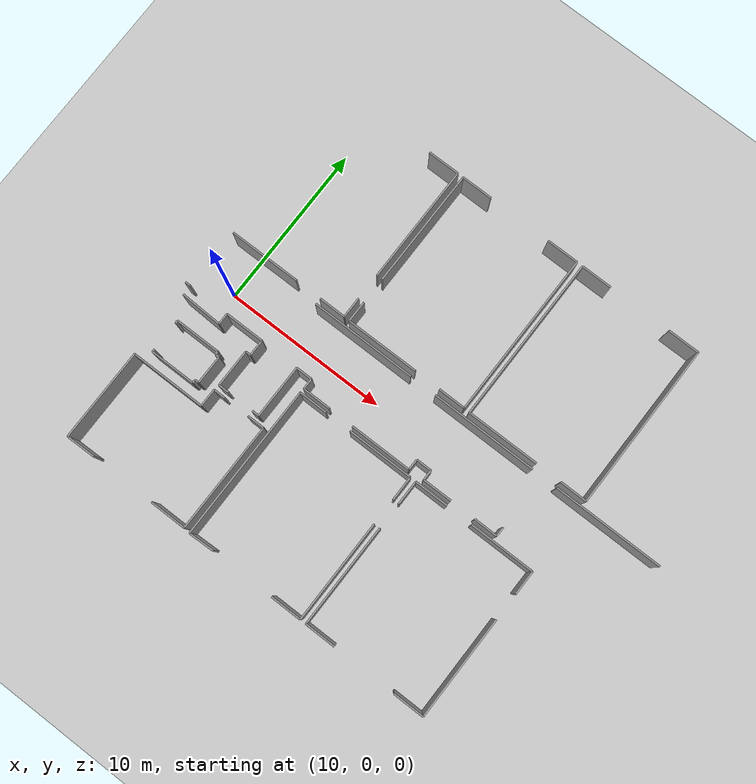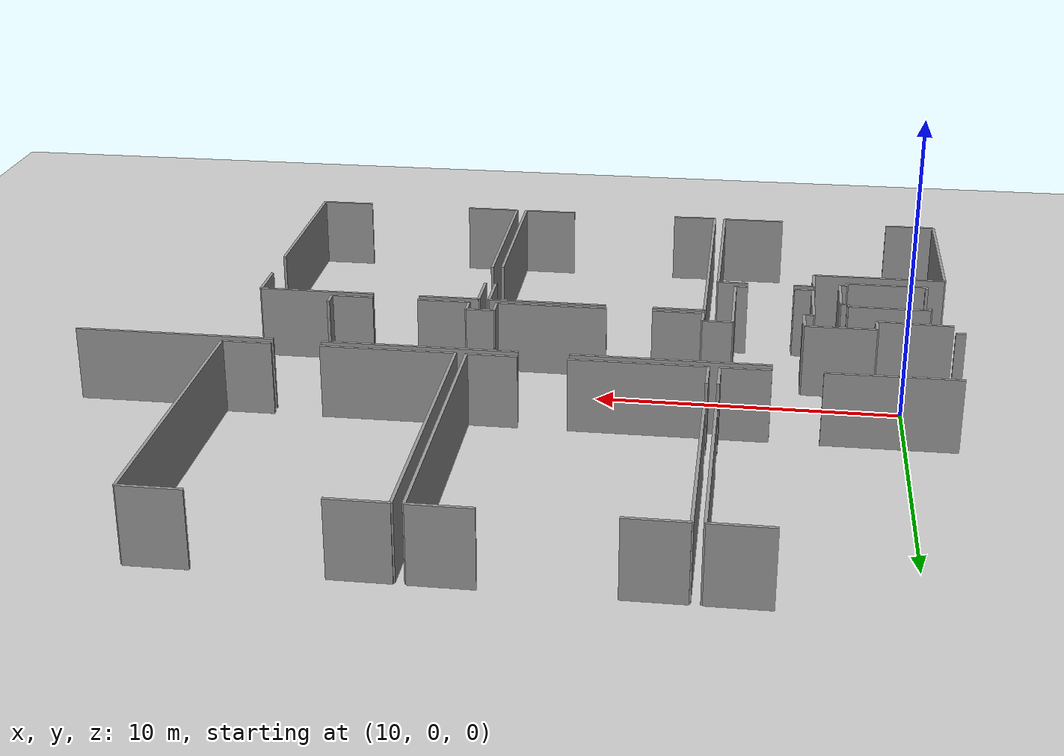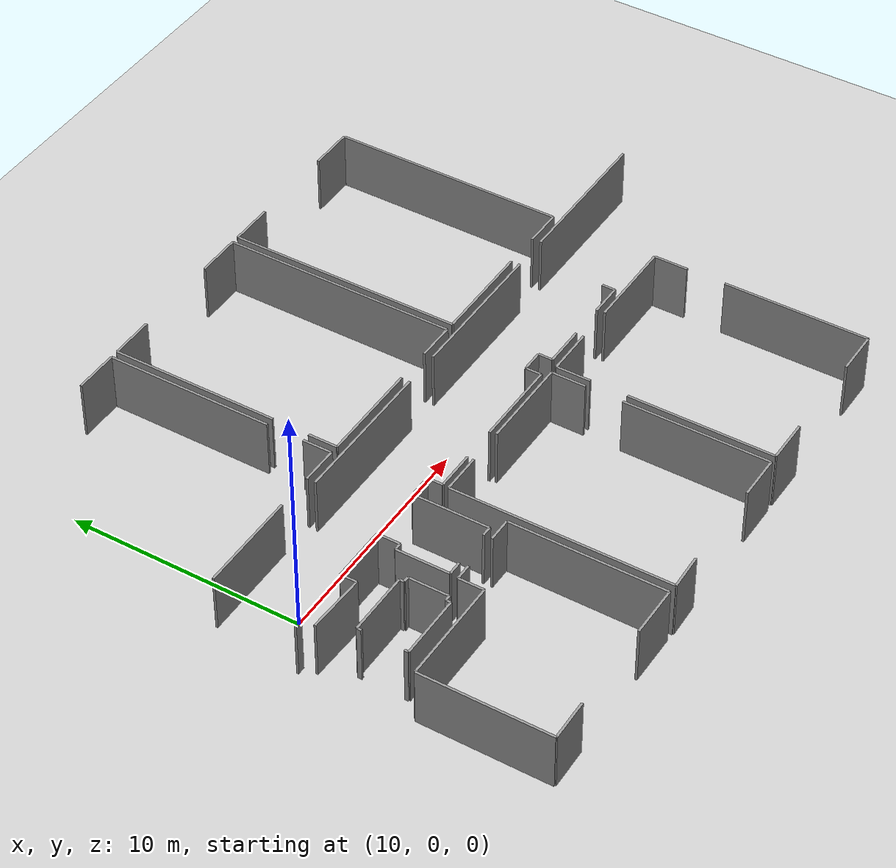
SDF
<sdf version="1.6">
 <world name="default">
  <model name="ground_plane">
   <static>1</static>
   <link name="link">
    <collision name="collision">
     <geometry><plane><normal>0 0 1</normal><size>100 100</size></plane></geometry>
     <surface><friction><ode><mu>100</mu><mu2>50</mu2></ode></friction></surface>
    </collision>
    <visual name="visual">
     <cast_shadows>0</cast_shadows>
     <geometry><plane><normal>0 0 1</normal><size>100 100</size></plane></geometry>
     <material>
      <script><uri>file://media/materials/scripts/gazebo.material</uri><name>Gazebo/Grey</name></script>
     </material>
    </visual>
   </link>
  </model>
  <model name="0510034691_Layout1">
   <static>1</static>
   <link name="Wall_211">
    <collision name="Wall_211_Collision">
     <geometry><box><size>0.175906860876 0.1 2.5</size></box></geometry>
     <pose>0.087953430438 0 1.25 0 0 0</pose>
    </collision>
    <visual name="Wall_211_Visual">
     <pose>0.087953430438 0 1.25 0 0 0</pose>
     <geometry><box><size>0.175906860876 0.1 2.5</size></box></geometry>
     <material>
      <script><uri>file://media/materials/scripts/gazebo.material</uri><name>Gazebo/Grey</name></script>
      <ambient>1 1 1 1</ambient>
     </material>
    </visual>
    <pose>65.508020031 -17.7415541829 0 0 0 1.57079632679</pose>
   </link>
   <link name="Wall_212">
    <collision name="Wall_212_Collision">
     <geometry><box><size>0.191031800503 0.1 2.5</size></box></geometry>
     <pose>0.0955159002517 0 1.25 0 0 0</pose>
    </collision>
    <visual name="Wall_212_Visual">
     <pose>0.0955159002517 0 1.25 0 0 0</pose>
     <geometry><box><size>0.191031800503 0.1 2.5</size></box></geometry>
     <material>
      <script><uri>file://media/materials/scripts/gazebo.material</uri><name>Gazebo/Grey</name></script>
      <ambient>1 1 1 1</ambient>
     </material>
    </visual>
    <pose>65.508020031 -15.8074684156 0 0 0 1.57079632679</pose>
   </link>
   <link name="Wall_213">
    <collision name="Wall_213_Collision">
     <geometry><box><size>2.74117288187 0.1 2.5</size></box></geometry>
     <pose>1.37058644094 0 1.25 0 0 0</pose>
    </collision>
    <visual name="Wall_213_Visual">
     <pose>1.37058644094 0 1.25 0 0 0</pose>
     <geometry><box><size>2.74117288187 0.1 2.5</size></box></geometry>
     <material>
      <script><uri>file://media/materials/scripts/gazebo.material</uri><name>Gazebo/Grey</name></script>
      <ambient>1 1 1 1</ambient>
     </material>
    </visual>
    <pose>65.508020031 -15.6164366151 0 0 0 0.0</pose>
   </link>
   <link name="Wall_214">
    <collision name="Wall_214_Collision">
     <geometry><box><size>0.195226111492 0.1 2.5</size></box></geometry>
     <pose>0.0976130557462 0 1.25 0 0 0</pose>
    </collision>
    <visual name="Wall_214_Visual">
     <pose>0.0976130557462 0 1.25 0 0 0</pose>
     <geometry><box><size>0.195226111492 0.1 2.5</size></box></geometry>
     <material>
      <script><uri>file://media/materials/scripts/gazebo.material</uri><name>Gazebo/Grey</name></script>
      <ambient>1 1 1 1</ambient>
     </material>
    </visual>
    <pose>68.2491929129 -15.6164366151 0 0 0 -1.57079632679</pose>
   </link>
   <link name="Wall_215">
    <collision name="Wall_215_Collision">
     <geometry><box><size>0.245176542363 0.1 2.5</size></box></geometry>
     <pose>0.122588271181 0 1.25 0 0 0</pose>
    </collision>
    <visual name="Wall_215_Visual">
     <pose>0.122588271181 0 1.25 0 0 0</pose>
     <geometry><box><size>0.245176542363 0.1 2.5</size></box></geometry>
     <material>
      <script><uri>file://media/materials/scripts/gazebo.material</uri><name>Gazebo/Grey</name></script>
      <ambient>1 1 1 1</ambient>
     </material>
    </visual>
    <pose>68.2491929129 -15.8116627266 0 0 0 0.0</pose>
   </link>
   <link name="Wall_216">
    <collision name="Wall_216_Collision">
     <geometry><box><size>1.72157401052 0.1 2.5</size></box></geometry>
     <pose>0.860787005262 0 1.25 0 0 0</pose>
    </collision>
    <visual name="Wall_216_Visual">
     <pose>0.860787005262 0 1.25 0 0 0</pose>
     <geometry><box><size>1.72157401052 0.1 2.5</size></box></geometry>
     <material>
      <script><uri>file://media/materials/scripts/gazebo.material</uri><name>Gazebo/Grey</name></script>
      <ambient>1 1 1 1</ambient>
     </material>
    </visual>
    <pose>68.4943694552 -15.8116627266 0 0 0 -1.57079632679</pose>
   </link>
   <link name="Wall_217">
    <collision name="Wall_217_Collision">
     <geometry><box><size>0.236660820051 0.1 2.5</size></box></geometry>
     <pose>0.118330410026 0 1.25 0 0 0</pose>
    </collision>
    <visual name="Wall_217_Visual">
     <pose>0.118330410026 0 1.25 0 0 0</pose>
     <geometry><box><size>0.236660820051 0.1 2.5</size></box></geometry>
     <material>
      <script><uri>file://media/materials/scripts/gazebo.material</uri><name>Gazebo/Grey</name></script>
      <ambient>1 1 1 1</ambient>
     </material>
    </visual>
    <pose>68.4943694552 -17.5332367371 0 0 0 3.14159265359</pose>
   </link>
   <link name="Wall_218">
    <collision name="Wall_218_Collision">
     <geometry><box><size>0.205902539465 0.1 2.5</size></box></geometry>
     <pose>0.102951269732 0 1.25 0 0 0</pose>
    </collision>
    <visual name="Wall_218_Visual">
     <pose>0.102951269732 0 1.25 0 0 0</pose>
     <geometry><box><size>0.205902539465 0.1 2.5</size></box></geometry>
     <material>
      <script><uri>file://media/materials/scripts/gazebo.material</uri><name>Gazebo/Grey</name></script>
      <ambient>1 1 1 1</ambient>
     </material>
    </visual>
    <pose>68.2577086352 -17.5332367371 0 0 0 -1.57079632679</pose>
   </link>
   <link name="Wall_219">
    <collision name="Wall_219_Collision">
     <geometry><box><size>2.74968966463 0.1 2.5</size></box></geometry>
     <pose>1.37484483231 0 1.25 0 0 0</pose>
    </collision>
    <visual name="Wall_219_Visual">
     <pose>1.37484483231 0 1.25 0 0 0</pose>
     <geometry><box><size>2.74968966463 0.1 2.5</size></box></geometry>
     <material>
      <script><uri>file://media/materials/scripts/gazebo.material</uri><name>Gazebo/Grey</name></script>
      <ambient>1 1 1 1</ambient>
     </material>
    </visual>
    <pose>68.2577086352 -17.7391392765 0 0 0 -3.14071440661</pose>
   </link>
   <link name="Wall_223">
    <collision name="Wall_223_Collision">
     <geometry><box><size>1.91959632934 0.1 2.5</size></box></geometry>
     <pose>0.959798164671 0 1.25 0 0 0</pose>
    </collision>
    <visual name="Wall_223_Visual">
     <pose>0.959798164671 0 1.25 0 0 0</pose>
     <geometry><box><size>1.91959632934 0.1 2.5</size></box></geometry>
     <material>
      <script><uri>file://media/materials/scripts/gazebo.material</uri><name>Gazebo/Grey</name></script>
      <ambient>1 1 1 1</ambient>
     </material>
    </visual>
    <pose>70.4720506368 -0.0184295482854 0 0 0 0.0</pose>
   </link>
   <link name="Wall_224">
    <collision name="Wall_224_Collision">
     <geometry><box><size>7.1524441394 0.1 2.5</size></box></geometry>
     <pose>3.5762220697 0 1.25 0 0 0</pose>
    </collision>
    <visual name="Wall_224_Visual">
     <pose>3.5762220697 0 1.25 0 0 0</pose>
     <geometry><box><size>7.1524441394 0.1 2.5</size></box></geometry>
     <material>
      <script><uri>file://media/materials/scripts/gazebo.material</uri><name>Gazebo/Grey</name></script>
      <ambient>1 1 1 1</ambient>
     </material>
    </visual>
    <pose>72.3916469661 -0.0184295482854 0 0 0 -1.57079632679</pose>
   </link>
   <link name="Wall_225">
    <collision name="Wall_225_Collision">
     <geometry><box><size>1.24520196243 0.1 2.5</size></box></geometry>
     <pose>0.622600981215 0 1.25 0 0 0</pose>
    </collision>
    <visual name="Wall_225_Visual">
     <pose>0.622600981215 0 1.25 0 0 0</pose>
     <geometry><box><size>1.24520196243 0.1 2.5</size></box></geometry>
     <material>
      <script><uri>file://media/materials/scripts/gazebo.material</uri><name>Gazebo/Grey</name></script>
      <ambient>1 1 1 1</ambient>
     </material>
    </visual>
    <pose>72.3916469661 -8.77055847886 0 0 0 -1.57079632679</pose>
   </link>
   <link name="Wall_226">
    <collision name="Wall_226_Collision">
     <geometry><box><size>1.62802816543 0.1 2.5</size></box></geometry>
     <pose>0.814014082717 0 1.25 0 0 0</pose>
    </collision>
    <visual name="Wall_226_Visual">
     <pose>0.814014082717 0 1.25 0 0 0</pose>
     <geometry><box><size>1.62802816543 0.1 2.5</size></box></geometry>
     <material>
      <script><uri>file://media/materials/scripts/gazebo.material</uri><name>Gazebo/Grey</name></script>
      <ambient>1 1 1 1</ambient>
     </material>
    </visual>
    <pose>72.3916469661 -10.0157604413 0 0 0 3.14159265359</pose>
   </link>
   <link name="Wall_227">
    <collision name="Wall_227_Collision">
     <geometry><box><size>4.32563816898 0.1 2.5</size></box></geometry>
     <pose>2.16281908449 0 1.25 0 0 0</pose>
    </collision>
    <visual name="Wall_227_Visual">
     <pose>2.16281908449 0 1.25 0 0 0</pose>
     <geometry><box><size>4.32563816898 0.1 2.5</size></box></geometry>
     <material>
      <script><uri>file://media/materials/scripts/gazebo.material</uri><name>Gazebo/Grey</name></script>
      <ambient>1 1 1 1</ambient>
     </material>
    </visual>
    <pose>69.1640611098 -10.0157604413 0 0 0 -3.13771408461</pose>
   </link>
   <link name="Wall_228">
    <collision name="Wall_228_Collision">
     <geometry><box><size>1.25981850072 0.1 2.5</size></box></geometry>
     <pose>0.629909250362 0 1.25 0 0 0</pose>
    </collision>
    <visual name="Wall_228_Visual">
     <pose>0.629909250362 0 1.25 0 0 0</pose>
     <geometry><box><size>1.25981850072 0.1 2.5</size></box></geometry>
     <material>
      <script><uri>file://media/materials/scripts/gazebo.material</uri><name>Gazebo/Grey</name></script>
      <ambient>1 1 1 1</ambient>
     </material>
    </visual>
    <pose>72.7496886042 -10.0254200666 0 0 0 1.57079632679</pose>
   </link>
   <link name="Wall_229">
    <collision name="Wall_229_Collision">
     <geometry><box><size>7.1528254404 0.1 2.5</size></box></geometry>
     <pose>3.5764127202 0 1.25 0 0 0</pose>
    </collision>
    <visual name="Wall_229_Visual">
     <pose>3.5764127202 0 1.25 0 0 0</pose>
     <geometry><box><size>7.1528254404 0.1 2.5</size></box></geometry>
     <material>
      <script><uri>file://media/materials/scripts/gazebo.material</uri><name>Gazebo/Grey</name></script>
      <ambient>1 1 1 1</ambient>
     </material>
    </visual>
    <pose>72.7496886042 -7.17125498869 0 0 0 1.57079632679</pose>
   </link>
   <link name="Wall_230">
    <collision name="Wall_230_Collision">
     <geometry><box><size>1.89303235974 0.1 2.5</size></box></geometry>
     <pose>0.946516179872 0 1.25 0 0 0</pose>
    </collision>
    <visual name="Wall_230_Visual">
     <pose>0.946516179872 0 1.25 0 0 0</pose>
     <geometry><box><size>1.89303235974 0.1 2.5</size></box></geometry>
     <material>
      <script><uri>file://media/materials/scripts/gazebo.material</uri><name>Gazebo/Grey</name></script>
      <ambient>1 1 1 1</ambient>
     </material>
    </visual>
    <pose>72.7496886042 -0.0184295482854 0 0 0 0.0</pose>
   </link>
   <link name="Wall_231">
    <collision name="Wall_231_Collision">
     <geometry><box><size>1.94005948296 0.1 2.5</size></box></geometry>
     <pose>0.970029741478 0 1.25 0 0 0</pose>
    </collision>
    <visual name="Wall_231_Visual">
     <pose>0.970029741478 0 1.25 0 0 0</pose>
     <geometry><box><size>1.94005948296 0.1 2.5</size></box></geometry>
     <material>
      <script><uri>file://media/materials/scripts/gazebo.material</uri><name>Gazebo/Grey</name></script>
      <ambient>1 1 1 1</ambient>
     </material>
    </visual>
    <pose>78.4910648466 -0.0184295482854 0 0 0 0.0</pose>
   </link>
   <link name="Wall_232">
    <collision name="Wall_232_Collision">
     <geometry><box><size>9.99072167569 0.1 2.5</size></box></geometry>
     <pose>4.99536083785 0 1.25 0 0 0</pose>
    </collision>
    <visual name="Wall_232_Visual">
     <pose>4.99536083785 0 1.25 0 0 0</pose>
     <geometry><box><size>9.99072167569 0.1 2.5</size></box></geometry>
     <material>
      <script><uri>file://media/materials/scripts/gazebo.material</uri><name>Gazebo/Grey</name></script>
      <ambient>1 1 1 1</ambient>
     </material>
    </visual>
    <pose>80.4311243295 -0.0184295482854 0 0 0 -1.57079632679</pose>
   </link>
   <link name="Wall_233">
    <collision name="Wall_233_Collision">
     <geometry><box><size>1.64518671039 0.1 2.5</size></box></geometry>
     <pose>0.822593355195 0 1.25 0 0 0</pose>
    </collision>
    <visual name="Wall_233_Visual">
     <pose>0.822593355195 0 1.25 0 0 0</pose>
     <geometry><box><size>1.64518671039 0.1 2.5</size></box></geometry>
     <material>
      <script><uri>file://media/materials/scripts/gazebo.material</uri><name>Gazebo/Grey</name></script>
      <ambient>1 1 1 1</ambient>
     </material>
    </visual>
    <pose>80.4311243295 -10.009151224 0 0 0 3.14159265359</pose>
   </link>
   <link name="Wall_234">
    <collision name="Wall_234_Collision">
     <geometry><box><size>4.44053413641 0.1 2.5</size></box></geometry>
     <pose>2.2202670682 0 1.25 0 0 0</pose>
    </collision>
    <visual name="Wall_234_Visual">
     <pose>2.2202670682 0 1.25 0 0 0</pose>
     <geometry><box><size>4.44053413641 0.1 2.5</size></box></geometry>
     <material>
      <script><uri>file://media/materials/scripts/gazebo.material</uri><name>Gazebo/Grey</name></script>
      <ambient>1 1 1 1</ambient>
     </material>
    </visual>
    <pose>77.1901929383 -10.009151224 0 0 0 -3.1379289324</pose>
   </link>
   <link name="Wall_235">
    <collision name="Wall_235_Collision">
     <geometry><box><size>10.0050840133 0.1 2.5</size></box></geometry>
     <pose>5.00254200666 0 1.25 0 0 0</pose>
    </collision>
    <visual name="Wall_235_Visual">
     <pose>5.00254200666 0 1.25 0 0 0</pose>
     <geometry><box><size>10.0050840133 0.1 2.5</size></box></geometry>
     <material>
      <script><uri>file://media/materials/scripts/gazebo.material</uri><name>Gazebo/Grey</name></script>
      <ambient>1 1 1 1</ambient>
     </material>
    </visual>
    <pose>80.7887846666 -10.0279620733 0 0 0 1.57079632679</pose>
   </link>
   <link name="Wall_236">
    <collision name="Wall_236_Collision">
     <geometry><box><size>1.89049035308 0.1 2.5</size></box></geometry>
     <pose>0.945245176542 0 1.25 0 0 0</pose>
    </collision>
    <visual name="Wall_236_Visual">
     <pose>0.945245176542 0 1.25 0 0 0</pose>
     <geometry><box><size>1.89049035308 0.1 2.5</size></box></geometry>
     <material>
      <script><uri>file://media/materials/scripts/gazebo.material</uri><name>Gazebo/Grey</name></script>
      <ambient>1 1 1 1</ambient>
     </material>
    </visual>
    <pose>80.7887846666 -0.0228780599405 0 0 0 0.0</pose>
   </link>
   <link name="Wall_237">
    <collision name="Wall_237_Collision">
     <geometry><box><size>1.93611937263 0.1 2.5</size></box></geometry>
     <pose>0.968059686316 0 1.25 0 0 0</pose>
    </collision>
    <visual name="Wall_237_Visual">
     <pose>0.968059686316 0 1.25 0 0 0</pose>
     <geometry><box><size>1.93611937263 0.1 2.5</size></box></geometry>
     <material>
      <script><uri>file://media/materials/scripts/gazebo.material</uri><name>Gazebo/Grey</name></script>
      <ambient>1 1 1 1</ambient>
     </material>
    </visual>
    <pose>86.5226619894 -0.0228780599405 0 0 0 0.0</pose>
   </link>
   <link name="Wall_238">
    <collision name="Wall_238_Collision">
     <geometry><box><size>9.99097587636 0.1 2.5</size></box></geometry>
     <pose>4.99548793818 0 1.25 0 0 0</pose>
    </collision>
    <visual name="Wall_238_Visual">
     <pose>4.99548793818 0 1.25 0 0 0</pose>
     <geometry><box><size>9.99097587636 0.1 2.5</size></box></geometry>
     <material>
      <script><uri>file://media/materials/scripts/gazebo.material</uri><name>Gazebo/Grey</name></script>
      <ambient>1 1 1 1</ambient>
     </material>
    </visual>
    <pose>88.458781362 -0.0228780599405 0 0 0 -1.57079632679</pose>
   </link>
   <link name="Wall_239">
    <collision name="Wall_239_Collision">
     <geometry><box><size>1.64556801139 0.1 2.5</size></box></geometry>
     <pose>0.822784005694 0 1.25 0 0 0</pose>
    </collision>
    <visual name="Wall_239_Visual">
     <pose>0.822784005694 0 1.25 0 0 0</pose>
     <geometry><box><size>1.64556801139 0.1 2.5</size></box></geometry>
     <material>
      <script><uri>file://media/materials/scripts/gazebo.material</uri><name>Gazebo/Grey</name></script>
      <ambient>1 1 1 1</ambient>
     </material>
    </visual>
    <pose>88.458781362 -10.0138539363 0 0 0 3.14159265359</pose>
   </link>
   <link name="Wall_240">
    <collision name="Wall_240_Collision">
     <geometry><box><size>4.4248934841 0.1 2.5</size></box></geometry>
     <pose>2.21244674205 0 1.25 0 0 0</pose>
    </collision>
    <visual name="Wall_240_Visual">
     <pose>2.21244674205 0 1.25 0 0 0</pose>
     <geometry><box><size>4.4248934841 0.1 2.5</size></box></geometry>
     <material>
      <script><uri>file://media/materials/scripts/gazebo.material</uri><name>Gazebo/Grey</name></script>
      <ambient>1 1 1 1</ambient>
     </material>
    </visual>
    <pose>85.2136556598 -10.0138539363 0 0 0 -3.1384042919</pose>
   </link>
   <link name="Wall_292">
    <collision name="Wall_292_Collision">
     <geometry><box><size>6.23833854445 0.1 2.5</size></box></geometry>
     <pose>3.11916927222 0 1.25 0 0 0</pose>
    </collision>
    <visual name="Wall_292_Visual">
     <pose>3.11916927222 0 1.25 0 0 0</pose>
     <geometry><box><size>6.23833854445 0.1 2.5</size></box></geometry>
     <material>
      <script><uri>file://media/materials/scripts/gazebo.material</uri><name>Gazebo/Grey</name></script>
      <ambient>1 1 1 1</ambient>
     </material>
    </visual>
    <pose>80.7884033656 -23.964132286 0 0 0 1.57079632679</pose>
   </link>
   <link name="Wall_293">
    <collision name="Wall_293_Collision">
     <geometry><box><size>1.48948880246 0.1 2.5</size></box></geometry>
     <pose>0.74474440123 0 1.25 0 0 0</pose>
    </collision>
    <visual name="Wall_293_Visual">
     <pose>0.74474440123 0 1.25 0 0 0</pose>
     <geometry><box><size>1.48948880246 0.1 2.5</size></box></geometry>
     <material>
      <script><uri>file://media/materials/scripts/gazebo.material</uri><name>Gazebo/Grey</name></script>
      <ambient>1 1 1 1</ambient>
     </material>
    </visual>
    <pose>80.7884033656 -16.1421235924 0 0 0 1.57079632679</pose>
   </link>
   <link name="Wall_294">
    <collision name="Wall_294_Collision">
     <geometry><box><size>2.06932052162 0.1 2.5</size></box></geometry>
     <pose>1.03466026081 0 1.25 0 0 0</pose>
    </collision>
    <visual name="Wall_294_Visual">
     <pose>1.03466026081 0 1.25 0 0 0</pose>
     <geometry><box><size>2.06932052162 0.1 2.5</size></box></geometry>
     <material>
      <script><uri>file://media/materials/scripts/gazebo.material</uri><name>Gazebo/Grey</name></script>
      <ambient>1 1 1 1</ambient>
     </material>
    </visual>
    <pose>80.7884033656 -14.6526347899 0 0 0 0.0</pose>
   </link>
   <link name="Wall_295">
    <collision name="Wall_295_Collision">
     <geometry><box><size>3.97913012532 0.1 2.5</size></box></geometry>
     <pose>1.98956506266 0 1.25 0 0 0</pose>
    </collision>
    <visual name="Wall_295_Visual">
     <pose>1.98956506266 0 1.25 0 0 0</pose>
     <geometry><box><size>3.97913012532 0.1 2.5</size></box></geometry>
     <material>
      <script><uri>file://media/materials/scripts/gazebo.material</uri><name>Gazebo/Grey</name></script>
      <ambient>1 1 1 1</ambient>
     </material>
    </visual>
    <pose>84.4582983807 -14.6526347899 0 0 0 0.0</pose>
   </link>
   <link name="Wall_296">
    <collision name="Wall_296_Collision">
     <geometry><box><size>1.46724624419 0.1 2.5</size></box></geometry>
     <pose>0.733623122093 0 1.25 0 0 0</pose>
    </collision>
    <visual name="Wall_296_Visual">
     <pose>0.733623122093 0 1.25 0 0 0</pose>
     <geometry><box><size>1.46724624419 0.1 2.5</size></box></geometry>
     <material>
      <script><uri>file://media/materials/scripts/gazebo.material</uri><name>Gazebo/Grey</name></script>
      <ambient>1 1 1 1</ambient>
     </material>
    </visual>
    <pose>88.4374285061 -14.6526347899 0 0 0 -1.57079632679</pose>
   </link>
   <link name="Wall_297">
    <collision name="Wall_297_Collision">
     <geometry><box><size>6.19372632756 0.1 2.5</size></box></geometry>
     <pose>3.09686316378 0 1.25 0 0 0</pose>
    </collision>
    <visual name="Wall_297_Visual">
     <pose>3.09686316378 0 1.25 0 0 0</pose>
     <geometry><box><size>6.19372632756 0.1 2.5</size></box></geometry>
     <material>
      <script><uri>file://media/materials/scripts/gazebo.material</uri><name>Gazebo/Grey</name></script>
      <ambient>1 1 1 1</ambient>
     </material>
    </visual>
    <pose>88.4374285061 -17.7762525738 0 0 0 -1.57079632679</pose>
   </link>
   <link name="Wall_298">
    <collision name="Wall_298_Collision">
     <geometry><box><size>1.89303235974 0.1 2.5</size></box></geometry>
     <pose>0.946516179872 0 1.25 0 0 0</pose>
    </collision>
    <visual name="Wall_298_Visual">
     <pose>0.946516179872 0 1.25 0 0 0</pose>
     <geometry><box><size>1.89303235974 0.1 2.5</size></box></geometry>
     <material>
      <script><uri>file://media/materials/scripts/gazebo.material</uri><name>Gazebo/Grey</name></script>
      <ambient>1 1 1 1</ambient>
     </material>
    </visual>
    <pose>88.4374285061 -23.9699789013 0 0 0 3.14159265359</pose>
   </link>
   <link name="Wall_299">
    <collision name="Wall_299_Collision">
     <geometry><box><size>1.88261921101 0.1 2.5</size></box></geometry>
     <pose>0.941309605506 0 1.25 0 0 0</pose>
    </collision>
    <visual name="Wall_299_Visual">
     <pose>0.941309605506 0 1.25 0 0 0</pose>
     <geometry><box><size>1.88261921101 0.1 2.5</size></box></geometry>
     <material>
      <script><uri>file://media/materials/scripts/gazebo.material</uri><name>Gazebo/Grey</name></script>
      <ambient>1 1 1 1</ambient>
     </material>
    </visual>
    <pose>82.6710134981 -23.9699789013 0 0 0 3.13848707351</pose>
   </link>
   <link name="Wall_300">
    <collision name="Wall_300_Collision">
     <geometry><box><size>9.36477194224 0.1 2.5</size></box></geometry>
     <pose>4.68238597112 0 1.25 0 0 0</pose>
    </collision>
    <visual name="Wall_300_Visual">
     <pose>4.68238597112 0 1.25 0 0 0</pose>
     <geometry><box><size>9.36477194224 0.1 2.5</size></box></geometry>
     <material>
      <script><uri>file://media/materials/scripts/gazebo.material</uri><name>Gazebo/Grey</name></script>
      <ambient>1 1 1 1</ambient>
     </material>
    </visual>
    <pose>73.0971809146 -24.0138285162 0 0 0 1.5728321546</pose>
   </link>
   <link name="Wall_301">
    <collision name="Wall_301_Collision">
     <geometry><box><size>1.7434352678 0.1 2.5</size></box></geometry>
     <pose>0.8717176339 0 1.25 0 0 0</pose>
    </collision>
    <visual name="Wall_301_Visual">
     <pose>0.8717176339 0 1.25 0 0 0</pose>
     <geometry><box><size>1.7434352678 0.1 2.5</size></box></geometry>
     <material>
      <script><uri>file://media/materials/scripts/gazebo.material</uri><name>Gazebo/Grey</name></script>
      <ambient>1 1 1 1</ambient>
     </material>
    </visual>
    <pose>73.0781158647 -14.6490759806 0 0 0 0.0</pose>
   </link>
   <link name="Wall_302">
    <collision name="Wall_302_Collision">
     <geometry><box><size>4.00760059991 0.1 2.5</size></box></geometry>
     <pose>2.00380029996 0 1.25 0 0 0</pose>
    </collision>
    <visual name="Wall_302_Visual">
     <pose>2.00380029996 0 1.25 0 0 0</pose>
     <geometry><box><size>4.00760059991 0.1 2.5</size></box></geometry>
     <material>
      <script><uri>file://media/materials/scripts/gazebo.material</uri><name>Gazebo/Grey</name></script>
      <ambient>1 1 1 1</ambient>
     </material>
    </visual>
    <pose>76.4155164087 -14.6490759806 0 0 0 0.0</pose>
   </link>
   <link name="Wall_303">
    <collision name="Wall_303_Collision">
     <geometry><box><size>1.49203080912 0.1 2.5</size></box></geometry>
     <pose>0.74601540456 0 1.25 0 0 0</pose>
    </collision>
    <visual name="Wall_303_Visual">
     <pose>0.74601540456 0 1.25 0 0 0</pose>
     <geometry><box><size>1.49203080912 0.1 2.5</size></box></geometry>
     <material>
      <script><uri>file://media/materials/scripts/gazebo.material</uri><name>Gazebo/Grey</name></script>
      <ambient>1 1 1 1</ambient>
     </material>
    </visual>
    <pose>80.4231170086 -14.6490759806 0 0 0 -1.57079632679</pose>
   </link>
   <link name="Wall_304">
    <collision name="Wall_304_Collision">
     <geometry><box><size>6.22600981215 0.1 2.5</size></box></geometry>
     <pose>3.11300490607 0 1.25 0 0 0</pose>
    </collision>
    <visual name="Wall_304_Visual">
     <pose>3.11300490607 0 1.25 0 0 0</pose>
     <geometry><box><size>6.22600981215 0.1 2.5</size></box></geometry>
     <material>
      <script><uri>file://media/materials/scripts/gazebo.material</uri><name>Gazebo/Grey</name></script>
      <ambient>1 1 1 1</ambient>
     </material>
    </visual>
    <pose>80.4231170086 -17.7377411729 0 0 0 -1.57079632679</pose>
   </link>
   <link name="Wall_305">
    <collision name="Wall_305_Collision">
     <geometry><box><size>1.90409008872 0.1 2.5</size></box></geometry>
     <pose>0.952045044358 0 1.25 0 0 0</pose>
    </collision>
    <visual name="Wall_305_Visual">
     <pose>0.952045044358 0 1.25 0 0 0</pose>
     <geometry><box><size>1.90409008872 0.1 2.5</size></box></geometry>
     <material>
      <script><uri>file://media/materials/scripts/gazebo.material</uri><name>Gazebo/Grey</name></script>
      <ambient>1 1 1 1</ambient>
     </material>
    </visual>
    <pose>80.4231170086 -23.963750985 0 0 0 3.14159265359</pose>
   </link>
   <link name="Wall_306">
    <collision name="Wall_306_Collision">
     <geometry><box><size>1.54495375577 0.1 2.5</size></box></geometry>
     <pose>0.772476877883 0 1.25 0 0 0</pose>
    </collision>
    <visual name="Wall_306_Visual">
     <pose>0.772476877883 0 1.25 0 0 0</pose>
     <geometry><box><size>1.54495375577 0.1 2.5</size></box></geometry>
     <material>
      <script><uri>file://media/materials/scripts/gazebo.material</uri><name>Gazebo/Grey</name></script>
      <ambient>1 1 1 1</ambient>
     </material>
    </visual>
    <pose>74.6413228603 -23.963750985 0 0 0 -3.10917336331</pose>
   </link>
   <link name="Wall_307">
    <collision name="Wall_307_Collision">
     <geometry><box><size>5.57627290984 0.1 2.5</size></box></geometry>
     <pose>2.78813645492 0 1.25 0 0 0</pose>
    </collision>
    <visual name="Wall_307_Visual">
     <pose>2.78813645492 0 1.25 0 0 0</pose>
     <geometry><box><size>5.57627290984 0.1 2.5</size></box></geometry>
     <material>
      <script><uri>file://media/materials/scripts/gazebo.material</uri><name>Gazebo/Grey</name></script>
      <ambient>1 1 1 1</ambient>
     </material>
    </visual>
    <pose>64.8420142861 -23.9909504563 0 0 0 1.57079632679</pose>
   </link>
   <link name="Wall_308">
    <collision name="Wall_308_Collision">
     <geometry><box><size>4.54269300186 0.1 2.5</size></box></geometry>
     <pose>2.27134650093 0 1.25 0 0 0</pose>
    </collision>
    <visual name="Wall_308_Visual">
     <pose>2.27134650093 0 1.25 0 0 0</pose>
     <geometry><box><size>4.54269300186 0.1 2.5</size></box></geometry>
     <material>
      <script><uri>file://media/materials/scripts/gazebo.material</uri><name>Gazebo/Grey</name></script>
      <ambient>1 1 1 1</ambient>
     </material>
    </visual>
    <pose>64.8420142861 -18.4146775465 0 0 0 0.0</pose>
   </link>
   <link name="Wall_309">
    <collision name="Wall_309_Collision">
     <geometry><box><size>1.08645364651 0.1 2.5</size></box></geometry>
     <pose>0.543226823254 0 1.25 0 0 0</pose>
    </collision>
    <visual name="Wall_309_Visual">
     <pose>0.543226823254 0 1.25 0 0 0</pose>
     <geometry><box><size>1.08645364651 0.1 2.5</size></box></geometry>
     <material>
      <script><uri>file://media/materials/scripts/gazebo.material</uri><name>Gazebo/Grey</name></script>
      <ambient>1 1 1 1</ambient>
     </material>
    </visual>
    <pose>69.3847072879 -18.4146775465 0 0 0 1.57079632679</pose>
   </link>
   <link name="Wall_310">
    <collision name="Wall_310_Collision">
     <geometry><box><size>0.701975139175 0.1 2.5</size></box></geometry>
     <pose>0.350987569587 0 1.25 0 0 0</pose>
    </collision>
    <visual name="Wall_310_Visual">
     <pose>0.350987569587 0 1.25 0 0 0</pose>
     <geometry><box><size>0.701975139175 0.1 2.5</size></box></geometry>
     <material>
      <script><uri>file://media/materials/scripts/gazebo.material</uri><name>Gazebo/Grey</name></script>
      <ambient>1 1 1 1</ambient>
     </material>
    </visual>
    <pose>69.3847072879 -17.3282238999 0 0 0 0.0</pose>
   </link>
   <link name="Wall_311">
    <collision name="Wall_311_Collision">
     <geometry><box><size>1.03192760365 0.1 2.5</size></box></geometry>
     <pose>0.515963801825 0 1.25 0 0 0</pose>
    </collision>
    <visual name="Wall_311_Visual">
     <pose>0.515963801825 0 1.25 0 0 0</pose>
     <geometry><box><size>1.03192760365 0.1 2.5</size></box></geometry>
     <material>
      <script><uri>file://media/materials/scripts/gazebo.material</uri><name>Gazebo/Grey</name></script>
      <ambient>1 1 1 1</ambient>
     </material>
    </visual>
    <pose>71.6825542083 -17.3282238999 0 0 0 0.0</pose>
   </link>
   <link name="Wall_312">
    <collision name="Wall_312_Collision">
     <geometry><box><size>6.63781489108 0.1 2.5</size></box></geometry>
     <pose>3.31890744554 0 1.25 0 0 0</pose>
    </collision>
    <visual name="Wall_312_Visual">
     <pose>3.31890744554 0 1.25 0 0 0</pose>
     <geometry><box><size>6.63781489108 0.1 2.5</size></box></geometry>
     <material>
      <script><uri>file://media/materials/scripts/gazebo.material</uri><name>Gazebo/Grey</name></script>
      <ambient>1 1 1 1</ambient>
     </material>
    </visual>
    <pose>72.7144818119 -17.3282238999 0 0 0 -1.57079632679</pose>
   </link>
   <link name="Wall_313">
    <collision name="Wall_313_Collision">
     <geometry><box><size>2.21434200158 0.1 2.5</size></box></geometry>
     <pose>1.10717100079 0 1.25 0 0 0</pose>
    </collision>
    <visual name="Wall_313_Visual">
     <pose>1.10717100079 0 1.25 0 0 0</pose>
     <geometry><box><size>2.21434200158 0.1 2.5</size></box></geometry>
     <material>
      <script><uri>file://media/materials/scripts/gazebo.material</uri><name>Gazebo/Grey</name></script>
      <ambient>1 1 1 1</ambient>
     </material>
    </visual>
    <pose>72.7144818119 -23.966038791 0 0 0 3.14159265359</pose>
   </link>
   <link name="Wall_314">
    <collision name="Wall_314_Collision">
     <geometry><box><size>1.76801404558 0.1 2.5</size></box></geometry>
     <pose>0.884007022789 0 1.25 0 0 0</pose>
    </collision>
    <visual name="Wall_314_Visual">
     <pose>0.884007022789 0 1.25 0 0 0</pose>
     <geometry><box><size>1.76801404558 0.1 2.5</size></box></geometry>
     <material>
      <script><uri>file://media/materials/scripts/gazebo.material</uri><name>Gazebo/Grey</name></script>
      <ambient>1 1 1 1</ambient>
     </material>
    </visual>
    <pose>66.6098528178 -23.966038791 0 0 0 -3.12750199085</pose>
   </link>
   <link name="Wall_316">
    <collision name="Wall_316_Collision">
     <geometry><box><size>0.334909377463 0.1 2.5</size></box></geometry>
     <pose>0.167454688731 0 1.25 0 0 0</pose>
    </collision>
    <visual name="Wall_316_Visual">
     <pose>0.167454688731 0 1.25 0 0 0</pose>
     <geometry><box><size>0.334909377463 0.1 2.5</size></box></geometry>
     <material>
      <script><uri>file://media/materials/scripts/gazebo.material</uri><name>Gazebo/Grey</name></script>
      <ambient>1 1 1 1</ambient>
     </material>
    </visual>
    <pose>64.8417600854 -13.7246752586 0 0 0 3.14159265359</pose>
   </link>
   <link name="Wall_322">
    <collision name="Wall_322_Collision">
     <geometry><box><size>6.42047332164 0.1 2.5</size></box></geometry>
     <pose>3.21023666082 0 1.25 0 0 0</pose>
    </collision>
    <visual name="Wall_322_Visual">
     <pose>3.21023666082 0 1.25 0 0 0</pose>
     <geometry><box><size>6.42047332164 0.1 2.5</size></box></geometry>
     <material>
      <script><uri>file://media/materials/scripts/gazebo.material</uri><name>Gazebo/Grey</name></script>
      <ambient>1 1 1 1</ambient>
     </material>
    </visual>
    <pose>70.7552301787 -10.3829533033 0 0 0 0.0</pose>
   </link>
   <link name="Wall_323">
    <collision name="Wall_323_Collision">
     <geometry><box><size>6.42441343196 0.1 2.5</size></box></geometry>
     <pose>3.21220671598 0 1.25 0 0 0</pose>
    </collision>
    <visual name="Wall_323_Visual">
     <pose>3.21220671598 0 1.25 0 0 0</pose>
     <geometry><box><size>6.42441343196 0.1 2.5</size></box></geometry>
     <material>
      <script><uri>file://media/materials/scripts/gazebo.material</uri><name>Gazebo/Grey</name></script>
      <ambient>1 1 1 1</ambient>
     </material>
    </visual>
    <pose>78.8118660871 -10.3829533033 0 0 0 0.0</pose>
   </link>
   <link name="Wall_324">
    <collision name="Wall_324_Collision">
     <geometry><box><size>6.66895447266 0.1 2.5</size></box></geometry>
     <pose>3.33447723633 0 1.25 0 0 0</pose>
    </collision>
    <visual name="Wall_324_Visual">
     <pose>3.33447723633 0 1.25 0 0 0</pose>
     <geometry><box><size>6.66895447266 0.1 2.5</size></box></geometry>
     <material>
      <script><uri>file://media/materials/scripts/gazebo.material</uri><name>Gazebo/Grey</name></script>
      <ambient>1 1 1 1</ambient>
     </material>
    </visual>
    <pose>86.8368540126 -10.3829533033 0 0 0 0.0</pose>
   </link>
   <link name="Wall_346">
    <collision name="Wall_346_Collision">
     <geometry><box><size>0.558605963548 0.1 2.5</size></box></geometry>
     <pose>0.279302981774 0 1.25 0 0 0</pose>
    </collision>
    <visual name="Wall_346_Visual">
     <pose>0.279302981774 0 1.25 0 0 0</pose>
     <geometry><box><size>0.558605963548 0.1 2.5</size></box></geometry>
     <material>
      <script><uri>file://media/materials/scripts/gazebo.material</uri><name>Gazebo/Grey</name></script>
      <ambient>1 1 1 1</ambient>
     </material>
    </visual>
    <pose>85.8509367295 -13.7648389639 0 0 0 -1.57079632679</pose>
   </link>
   <link name="Wall_347">
    <collision name="Wall_347_Collision">
     <geometry><box><size>1.44055517425 0.1 2.5</size></box></geometry>
     <pose>0.720277587127 0 1.25 0 0 0</pose>
    </collision>
    <visual name="Wall_347_Visual">
     <pose>0.720277587127 0 1.25 0 0 0</pose>
     <geometry><box><size>1.44055517425 0.1 2.5</size></box></geometry>
     <material>
      <script><uri>file://media/materials/scripts/gazebo.material</uri><name>Gazebo/Grey</name></script>
      <ambient>1 1 1 1</ambient>
     </material>
    </visual>
    <pose>85.8509367295 -14.3234449274 0 0 0 3.14159265359</pose>
   </link>
   <link name="Wall_348">
    <collision name="Wall_348_Collision">
     <geometry><box><size>1.79338569867 0.1 2.5</size></box></geometry>
     <pose>0.896692849335 0 1.25 0 0 0</pose>
    </collision>
    <visual name="Wall_348_Visual">
     <pose>0.896692849335 0 1.25 0 0 0</pose>
     <geometry><box><size>1.79338569867 0.1 2.5</size></box></geometry>
     <material>
      <script><uri>file://media/materials/scripts/gazebo.material</uri><name>Gazebo/Grey</name></script>
      <ambient>1 1 1 1</ambient>
     </material>
    </visual>
    <pose>82.8522585729 -14.3234449274 0 0 0 3.14159265359</pose>
   </link>
   <link name="Wall_349">
    <collision name="Wall_349_Collision">
     <geometry><box><size>0.617453417728 0.1 2.5</size></box></geometry>
     <pose>0.308726708864 0 1.25 0 0 0</pose>
    </collision>
    <visual name="Wall_349_Visual">
     <pose>0.308726708864 0 1.25 0 0 0</pose>
     <geometry><box><size>0.617453417728 0.1 2.5</size></box></geometry>
     <material>
      <script><uri>file://media/materials/scripts/gazebo.material</uri><name>Gazebo/Grey</name></script>
      <ambient>1 1 1 1</ambient>
     </material>
    </visual>
    <pose>81.0588728742 -14.3234449274 0 0 0 1.57079632679</pose>
   </link>
   <link name="Wall_350">
    <collision name="Wall_350_Collision">
     <geometry><box><size>0.940796664887 0.1 2.5</size></box></geometry>
     <pose>0.470398332444 0 1.25 0 0 0</pose>
    </collision>
    <visual name="Wall_350_Visual">
     <pose>0.470398332444 0 1.25 0 0 0</pose>
     <geometry><box><size>0.940796664887 0.1 2.5</size></box></geometry>
     <material>
      <script><uri>file://media/materials/scripts/gazebo.material</uri><name>Gazebo/Grey</name></script>
      <ambient>1 1 1 1</ambient>
     </material>
    </visual>
    <pose>81.0588728742 -13.7059915097 0 0 0 3.14159265359</pose>
   </link>
   <link name="Wall_351">
    <collision name="Wall_351_Collision">
     <geometry><box><size>0.676173771575 0.1 2.5</size></box></geometry>
     <pose>0.338086885788 0 1.25 0 0 0</pose>
    </collision>
    <visual name="Wall_351_Visual">
     <pose>0.338086885788 0 1.25 0 0 0</pose>
     <geometry><box><size>0.676173771575 0.1 2.5</size></box></geometry>
     <material>
      <script><uri>file://media/materials/scripts/gazebo.material</uri><name>Gazebo/Grey</name></script>
      <ambient>1 1 1 1</ambient>
     </material>
    </visual>
    <pose>80.1180762094 -13.7059915097 0 0 0 -1.57079632679</pose>
   </link>
   <link name="Wall_352">
    <collision name="Wall_352_Collision">
     <geometry><box><size>3.76305955922 0.1 2.5</size></box></geometry>
     <pose>1.88152977961 0 1.25 0 0 0</pose>
    </collision>
    <visual name="Wall_352_Visual">
     <pose>1.88152977961 0 1.25 0 0 0</pose>
     <geometry><box><size>3.76305955922 0.1 2.5</size></box></geometry>
     <material>
      <script><uri>file://media/materials/scripts/gazebo.material</uri><name>Gazebo/Grey</name></script>
      <ambient>1 1 1 1</ambient>
     </material>
    </visual>
    <pose>80.1180762094 -14.3821652813 0 0 0 3.14159265359</pose>
   </link>
   <link name="Wall_353">
    <collision name="Wall_353_Collision">
     <geometry><box><size>1.71280408755 0.1 2.5</size></box></geometry>
     <pose>0.856402043773 0 1.25 0 0 0</pose>
    </collision>
    <visual name="Wall_353_Visual">
     <pose>0.856402043773 0 1.25 0 0 0</pose>
     <geometry><box><size>1.71280408755 0.1 2.5</size></box></geometry>
     <material>
      <script><uri>file://media/materials/scripts/gazebo.material</uri><name>Gazebo/Grey</name></script>
      <ambient>1 1 1 1</ambient>
     </material>
    </visual>
    <pose>74.8160858181 -14.3821652813 0 0 0 3.14159265359</pose>
   </link>
   <link name="Wall_354">
    <collision name="Wall_354_Collision">
     <geometry><box><size>0.653168611302 0.1 2.5</size></box></geometry>
     <pose>0.326584305651 0 1.25 0 0 0</pose>
    </collision>
    <visual name="Wall_354_Visual">
     <pose>0.326584305651 0 1.25 0 0 0</pose>
     <geometry><box><size>0.653168611302 0.1 2.5</size></box></geometry>
     <material>
      <script><uri>file://media/materials/scripts/gazebo.material</uri><name>Gazebo/Grey</name></script>
      <ambient>1 1 1 1</ambient>
     </material>
    </visual>
    <pose>73.1032817306 -14.3821652813 0 0 0 1.57079632679</pose>
   </link>
   <link name="Wall_355">
    <collision name="Wall_355_Collision">
     <geometry><box><size>0.997102112408 0.1 2.5</size></box></geometry>
     <pose>0.498551056204 0 1.25 0 0 0</pose>
    </collision>
    <visual name="Wall_355_Visual">
     <pose>0.498551056204 0 1.25 0 0 0</pose>
     <geometry><box><size>0.997102112408 0.1 2.5</size></box></geometry>
     <material>
      <script><uri>file://media/materials/scripts/gazebo.material</uri><name>Gazebo/Grey</name></script>
      <ambient>1 1 1 1</ambient>
     </material>
    </visual>
    <pose>73.1032817306 -13.72899667 0 0 0 3.14159265359</pose>
   </link>
   <link name="Wall_356">
    <collision name="Wall_356_Collision">
     <geometry><box><size>3.24677800656 0.1 2.5</size></box></geometry>
     <pose>1.62338900328 0 1.25 0 0 0</pose>
    </collision>
    <visual name="Wall_356_Visual">
     <pose>1.62338900328 0 1.25 0 0 0</pose>
     <geometry><box><size>3.24677800656 0.1 2.5</size></box></geometry>
     <material>
      <script><uri>file://media/materials/scripts/gazebo.material</uri><name>Gazebo/Grey</name></script>
      <ambient>1 1 1 1</ambient>
     </material>
    </visual>
    <pose>72.1061796182 -13.72899667 0 0 0 -1.57079632679</pose>
   </link>
   <link name="Wall_357">
    <collision name="Wall_357_Collision">
     <geometry><box><size>0.434556038537 0.1 2.5</size></box></geometry>
     <pose>0.217278019268 0 1.25 0 0 0</pose>
    </collision>
    <visual name="Wall_357_Visual">
     <pose>0.217278019268 0 1.25 0 0 0</pose>
     <geometry><box><size>0.434556038537 0.1 2.5</size></box></geometry>
     <material>
      <script><uri>file://media/materials/scripts/gazebo.material</uri><name>Gazebo/Grey</name></script>
      <ambient>1 1 1 1</ambient>
     </material>
    </visual>
    <pose>72.1061796182 -16.9757746765 0 0 0 3.14159265359</pose>
   </link>
   <link name="Wall_358">
    <collision name="Wall_358_Collision">
     <geometry><box><size>0.622410330715 0.1 2.5</size></box></geometry>
     <pose>0.311205165358 0 1.25 0 0 0</pose>
    </collision>
    <visual name="Wall_358_Visual">
     <pose>0.311205165358 0 1.25 0 0 0</pose>
     <geometry><box><size>0.622410330715 0.1 2.5</size></box></geometry>
     <material>
      <script><uri>file://media/materials/scripts/gazebo.material</uri><name>Gazebo/Grey</name></script>
      <ambient>1 1 1 1</ambient>
     </material>
    </visual>
    <pose>70.0532550395 -16.9757746765 0 0 0 3.14159265359</pose>
   </link>
   <link name="Wall_359">
    <collision name="Wall_359_Collision">
     <geometry><box><size>2.27865477008 0.1 2.5</size></box></geometry>
     <pose>1.13932738504 0 1.25 0 0 0</pose>
    </collision>
    <visual name="Wall_359_Visual">
     <pose>1.13932738504 0 1.25 0 0 0</pose>
     <geometry><box><size>2.27865477008 0.1 2.5</size></box></geometry>
     <material>
      <script><uri>file://media/materials/scripts/gazebo.material</uri><name>Gazebo/Grey</name></script>
      <ambient>1 1 1 1</ambient>
     </material>
    </visual>
    <pose>69.4308447088 -16.9757746765 0 0 0 1.57079632679</pose>
   </link>
   <link name="Wall_360">
    <collision name="Wall_360_Collision">
     <geometry><box><size>0.311268715524 0.1 2.5</size></box></geometry>
     <pose>0.155634357762 0 1.25 0 0 0</pose>
    </collision>
    <visual name="Wall_360_Visual">
     <pose>0.155634357762 0 1.25 0 0 0</pose>
     <geometry><box><size>0.311268715524 0.1 2.5</size></box></geometry>
     <material>
      <script><uri>file://media/materials/scripts/gazebo.material</uri><name>Gazebo/Grey</name></script>
      <ambient>1 1 1 1</ambient>
     </material>
    </visual>
    <pose>69.4308447088 -14.6971199065 0 0 0 0.0</pose>
   </link>
   <link name="Wall_361">
    <collision name="Wall_361_Collision">
     <geometry><box><size>0.978037062457 0.1 2.5</size></box></geometry>
     <pose>0.489018531229 0 1.25 0 0 0</pose>
    </collision>
    <visual name="Wall_361_Visual">
     <pose>0.489018531229 0 1.25 0 0 0</pose>
     <geometry><box><size>0.978037062457 0.1 2.5</size></box></geometry>
     <material>
      <script><uri>file://media/materials/scripts/gazebo.material</uri><name>Gazebo/Grey</name></script>
      <ambient>1 1 1 1</ambient>
     </material>
    </visual>
    <pose>69.7421134243 -14.6971199065 0 0 0 1.57079632679</pose>
   </link>
   <link name="Wall_362">
    <collision name="Wall_362_Collision">
     <geometry><box><size>2.37868273215 0.1 2.5</size></box></geometry>
     <pose>1.18934136607 0 1.25 0 0 0</pose>
    </collision>
    <visual name="Wall_362_Visual">
     <pose>1.18934136607 0 1.25 0 0 0</pose>
     <geometry><box><size>2.37868273215 0.1 2.5</size></box></geometry>
     <material>
      <script><uri>file://media/materials/scripts/gazebo.material</uri><name>Gazebo/Grey</name></script>
      <ambient>1 1 1 1</ambient>
     </material>
    </visual>
    <pose>69.7421134243 -13.719082844 0 0 0 3.14159265359</pose>
   </link>
   <link name="Wall_363">
    <collision name="Wall_363_Collision">
     <geometry><box><size>0.689010905209 0.1 2.5</size></box></geometry>
     <pose>0.344505452604 0 1.25 0 0 0</pose>
    </collision>
    <visual name="Wall_363_Visual">
     <pose>0.344505452604 0 1.25 0 0 0</pose>
     <geometry><box><size>0.689010905209 0.1 2.5</size></box></geometry>
     <material>
      <script><uri>file://media/materials/scripts/gazebo.material</uri><name>Gazebo/Grey</name></script>
      <ambient>1 1 1 1</ambient>
     </material>
    </visual>
    <pose>67.3634306922 -13.719082844 0 0 0 -1.57079632679</pose>
   </link>
   <link name="Wall_364">
    <collision name="Wall_364_Collision">
     <geometry><box><size>2.52325763154 0.1 2.5</size></box></geometry>
     <pose>1.26162881577 0 1.25 0 0 0</pose>
    </collision>
    <visual name="Wall_364_Visual">
     <pose>1.26162881577 0 1.25 0 0 0</pose>
     <geometry><box><size>2.52325763154 0.1 2.5</size></box></geometry>
     <material>
      <script><uri>file://media/materials/scripts/gazebo.material</uri><name>Gazebo/Grey</name></script>
      <ambient>1 1 1 1</ambient>
     </material>
    </visual>
    <pose>67.3634306922 -14.4080937492 0 0 0 3.10612366402</pose>
   </link>
   <pose>-56.5 12.4463356974 0 0 0 0</pose>
  </model>
 </world>
</sdf>
